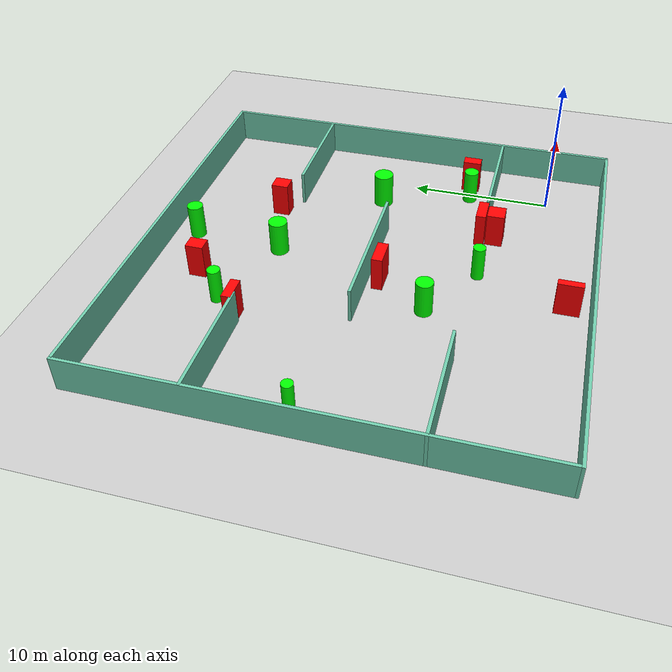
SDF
<sdf version="1.7">
 <world name="default">
  <light name="sun" type="directional">
   <pose>0 0 10 0 -0 0</pose>
   <diffuse>0.8 0.8 0.8 1</diffuse>
   <specular>0.2 0.2 0.2 1</specular>
   <attenuation>
    <range>1000</range>
    <constant>0.9</constant>
    <linear>0.01</linear>
    <quadratic>0.001</quadratic>
   </attenuation>
   <direction>-0.5 0.1 -0.9</direction>
   <spot><inner_angle>0</inner_angle><outer_angle>0</outer_angle><falloff>0</falloff></spot>
  </light>
  <model name="ground_plane">
   <static>1</static>
   <link name="link">
    <collision name="collision">
     <geometry><plane><normal>0 0 1</normal><size>100 100</size></plane></geometry>
     <surface>
      <contact><collide_bitmask>65535</collide_bitmask></contact>
      <friction><ode><mu>100</mu><mu2>50</mu2></ode></friction>
     </surface>
    </collision>
    <visual name="visual">
     <cast_shadows>0</cast_shadows>
     <geometry><plane><normal>0 0 1</normal><size>100 100</size></plane></geometry>
     <material>
      <script><uri>file://media/materials/scripts/gazebo.material</uri><name>Gazebo/Grey</name></script>
     </material>
    </visual>
   </link>
  </model>
  <gravity>0 0 -9.8</gravity>
  <magnetic_field>6e-06 2.3e-05 -4.2e-05</magnetic_field>
  <atmosphere type="adiabatic"/>
  <physics type="ode">
   <max_step_size>0.001</max_step_size>
   <real_time_factor>1</real_time_factor>
   <real_time_update_rate>1000</real_time_update_rate>
  </physics>
  <scene><ambient>0.4 0.4 0.4 1</ambient><background>0.7 0.7 0.7 1</background><shadows>1</shadows></scene>
  <spherical_coordinates>
   <surface_model>EARTH_WGS84</surface_model>
   <latitude_deg>0</latitude_deg>
   <longitude_deg>0</longitude_deg>
   <elevation>0</elevation>
   <heading_deg>0</heading_deg>
  </spherical_coordinates>
  <model name="my_base_walls">
   <link name="Wall_10">
    <collision name="Wall_10_Collision">
     <geometry><box><size>8.2 0.2 2.5</size></box></geometry>
     <pose>0 0 1.25 0 -0 0</pose>
    </collision>
    <visual name="Wall_10_Visual">
     <pose>0 0 1.25 0 -0 0</pose>
     <geometry><box><size>8.2 0.2 2.5</size></box></geometry>
     <material>
      <script><uri>file://media/materials/scripts/gazebo.material</uri><name>Gazebo/Grey</name></script>
      <ambient>0.435294 0.796078 0.67451 1</ambient>
     </material>
     <meta><layer>0</layer></meta>
    </visual>
    <pose>-11 -7 0 0 -0 0</pose>
   </link>
   <link name="Wall_12">
    <collision name="Wall_12_Collision">
     <geometry><box><size>8.2 0.2 2.5</size></box></geometry>
     <pose>0 0 1.25 0 -0 0</pose>
    </collision>
    <visual name="Wall_12_Visual">
     <pose>0 0 1.25 0 -0 0</pose>
     <geometry><box><size>8.2 0.2 2.5</size></box></geometry>
     <material>
      <script><uri>file://media/materials/scripts/gazebo.material</uri><name>Gazebo/Grey</name></script>
      <ambient>0.435294 0.796078 0.67451 1</ambient>
     </material>
     <meta><layer>0</layer></meta>
    </visual>
    <pose>-11 7 0 0 -0 0</pose>
   </link>
   <link name="Wall_14">
    <collision name="Wall_14_Collision">
     <geometry><box><size>8.2 0.2 2.5</size></box></geometry>
     <pose>0 0 1.25 0 -0 0</pose>
    </collision>
    <visual name="Wall_14_Visual">
     <pose>0 0 1.25 0 -0 0</pose>
     <geometry><box><size>8.2 0.2 2.5</size></box></geometry>
     <material>
      <script><uri>file://media/materials/scripts/gazebo.material</uri><name>Gazebo/Grey</name></script>
      <ambient>0.435294 0.796078 0.67451 1</ambient>
     </material>
     <meta><layer>0</layer></meta>
    </visual>
    <pose>11 7 0 0 -0 3.14159</pose>
   </link>
   <link name="Wall_16">
    <collision name="Wall_16_Collision">
     <geometry><box><size>10.2 0.2 2.5</size></box></geometry>
     <pose>0 0 1.25 0 -0 0</pose>
    </collision>
    <visual name="Wall_16_Visual">
     <pose>0 0 1.25 0 -0 0</pose>
     <geometry><box><size>10.2 0.2 2.5</size></box></geometry>
     <material>
      <script><uri>file://media/materials/scripts/gazebo.material</uri><name>Gazebo/Grey</name></script>
      <ambient>0.435294 0.796078 0.67451 1</ambient>
     </material>
     <meta><layer>0</layer></meta>
    </visual>
    <pose>0 0 0 0 -0 3.14159</pose>
   </link>
   <link name="Wall_2">
    <collision name="Wall_2_Collision">
     <geometry><box><size>30.2 0.2 2.5</size></box></geometry>
     <pose>0 0 1.25 0 -0 0</pose>
    </collision>
    <visual name="Wall_2_Visual">
     <pose>0 0 1.25 0 -0 0</pose>
     <geometry><box><size>30.2 0.2 2.5</size></box></geometry>
     <material>
      <script><uri>file://media/materials/scripts/gazebo.material</uri><name>Gazebo/Grey</name></script>
      <ambient>0.435294 0.796078 0.67451 1</ambient>
     </material>
     <meta><layer>0</layer></meta>
    </visual>
    <pose>0 -15 0 0 -0 3.14159</pose>
   </link>
   <link name="Wall_3">
    <collision name="Wall_3_Collision">
     <geometry><box><size>30.2 0.2 2.5</size></box></geometry>
     <pose>0 0 1.25 0 -0 0</pose>
    </collision>
    <visual name="Wall_3_Visual">
     <pose>0 0 1.25 0 -0 0</pose>
     <geometry><box><size>30.2 0.2 2.5</size></box></geometry>
     <material>
      <script><uri>file://media/materials/scripts/gazebo.material</uri><name>Gazebo/Grey</name></script>
      <ambient>0.435294 0.796078 0.67451 1</ambient>
     </material>
     <meta><layer>0</layer></meta>
    </visual>
    <pose>-15 0 0 0 -0 1.5708</pose>
   </link>
   <link name="Wall_4">
    <collision name="Wall_4_Collision">
     <geometry><box><size>30.2 0.2 2.5</size></box></geometry>
     <pose>0 0 1.25 0 -0 0</pose>
    </collision>
    <visual name="Wall_4_Visual">
     <pose>0 0 1.25 0 -0 0</pose>
     <geometry><box><size>30.2 0.2 2.5</size></box></geometry>
     <material>
      <script><uri>file://media/materials/scripts/gazebo.material</uri><name>Gazebo/Grey</name></script>
      <ambient>0.435294 0.796078 0.67451 1</ambient>
     </material>
     <meta><layer>0</layer></meta>
    </visual>
    <pose>0 15 0 0 -0 0</pose>
   </link>
   <link name="Wall_6">
    <collision name="Wall_6_Collision">
     <geometry><box><size>30.2 0.2 2.5</size></box></geometry>
     <pose>0 0 1.25 0 -0 0</pose>
    </collision>
    <visual name="Wall_6_Visual">
     <pose>0 0 1.25 0 -0 0</pose>
     <geometry><box><size>30.2 0.2 2.5</size></box></geometry>
     <material>
      <script><uri>file://media/materials/scripts/gazebo.material</uri><name>Gazebo/Grey</name></script>
      <ambient>0.435294 0.796078 0.67451 1</ambient>
     </material>
     <meta><layer>0</layer></meta>
    </visual>
    <pose>15 0 0 0 -0 1.5708</pose>
   </link>
   <link name="Wall_8">
    <collision name="Wall_8_Collision">
     <geometry><box><size>8.2 0.2 2.5</size></box></geometry>
     <pose>0 0 1.25 0 -0 0</pose>
    </collision>
    <visual name="Wall_8_Visual">
     <pose>0 0 1.25 0 -0 0</pose>
     <geometry><box><size>8.2 0.2 2.5</size></box></geometry>
     <material>
      <script><uri>file://media/materials/scripts/gazebo.material</uri><name>Gazebo/Grey</name></script>
      <ambient>0.435294 0.796078 0.67451 1</ambient>
     </material>
     <meta><layer>0</layer></meta>
    </visual>
    <pose>11 -7 0 0 -0 3.14159</pose>
   </link>
   <static>1</static>
   <pose>-11 11 0 0 -0 0</pose>
  </model>
  <model name="cylinder1">
   <static>1</static>
   <link name="link">
    <inertial>
     <mass>1</mass>
     <inertia><ixx>0.5</ixx><ixy>0</ixy><ixz>0</ixz><iyy>0.5</iyy><iyz>0</iyz><izz>1</izz></inertia>
    </inertial>
    <collision name="collision">
     <geometry><cylinder><radius>0.5962180562307992</radius><length>2.5</length></cylinder></geometry>
    </collision>
    <visual name="visual">
     <geometry><cylinder><radius>0.5962180562307992</radius><length>2.5</length></cylinder></geometry>
     <material>
      <ambient>0 1 0 1</ambient>
      <diffuse>0 1 0 1</diffuse>
      <specular>0.1 0.1 0.1 1</specular>
      <emissive>0 0 0 0</emissive>
     </material>
    </visual>
   </link>
   <pose>-14.010651571895982 6.608825217761234 1.25 0 0 0</pose>
  </model>
  <model name="cylinder2">
   <static>1</static>
   <link name="link">
    <inertial>
     <mass>1</mass>
     <inertia><ixx>0.5</ixx><ixy>0</ixy><ixz>0</ixz><iyy>0.5</iyy><iyz>0</iyz><izz>1</izz></inertia>
    </inertial>
    <collision name="collision">
     <geometry><cylinder><radius>0.4301331536562519</radius><length>2.5</length></cylinder></geometry>
    </collision>
    <visual name="visual">
     <geometry><cylinder><radius>0.4301331536562519</radius><length>2.5</length></cylinder></geometry>
     <material>
      <ambient>0 1 0 1</ambient>
      <diffuse>0 1 0 1</diffuse>
      <specular>0.1 0.1 0.1 1</specular>
      <emissive>0 0 0 0</emissive>
     </material>
    </visual>
   </link>
   <pose>-9.577299178462226 3.774518703337007 1.25 0 0 0</pose>
  </model>
  <model name="cylinder3">
   <static>1</static>
   <link name="link">
    <inertial>
     <mass>1</mass>
     <inertia><ixx>0.5</ixx><ixy>0</ixy><ixz>0</ixz><iyy>0.5</iyy><iyz>0</iyz><izz>1</izz></inertia>
    </inertial>
    <collision name="collision">
     <geometry><cylinder><radius>0.44154466474629406</radius><length>2.5</length></cylinder></geometry>
    </collision>
    <visual name="visual">
     <geometry><cylinder><radius>0.44154466474629406</radius><length>2.5</length></cylinder></geometry>
     <material>
      <ambient>0 1 0 1</ambient>
      <diffuse>0 1 0 1</diffuse>
      <specular>0.1 0.1 0.1 1</specular>
      <emissive>0 0 0 0</emissive>
     </material>
    </visual>
   </link>
   <pose>-16.23249972618176 20.07868664935769 1.25 0 0 0</pose>
  </model>
  <model name="cylinder4">
   <static>1</static>
   <link name="link">
    <inertial>
     <mass>1</mass>
     <inertia><ixx>0.5</ixx><ixy>0</ixy><ixz>0</ixz><iyy>0.5</iyy><iyz>0</iyz><izz>1</izz></inertia>
    </inertial>
    <collision name="collision">
     <geometry><cylinder><radius>0.6531182921640233</radius><length>2.5</length></cylinder></geometry>
    </collision>
    <visual name="visual">
     <geometry><cylinder><radius>0.6531182921640233</radius><length>2.5</length></cylinder></geometry>
     <material>
      <ambient>0 1 0 1</ambient>
      <diffuse>0 1 0 1</diffuse>
      <specular>0.1 0.1 0.1 1</specular>
      <emissive>0 0 0 0</emissive>
     </material>
    </visual>
   </link>
   <pose>-10.192356453054561 17.823773396276934 1.25 0 0 0</pose>
  </model>
  <model name="cylinder5">
   <static>1</static>
   <link name="link">
    <inertial>
     <mass>1</mass>
     <inertia><ixx>0.5</ixx><ixy>0</ixy><ixz>0</ixz><iyy>0.5</iyy><iyz>0</iyz><izz>1</izz></inertia>
    </inertial>
    <collision name="collision">
     <geometry><cylinder><radius>0.5481431809446653</radius><length>2.5</length></cylinder></geometry>
    </collision>
    <visual name="visual">
     <geometry><cylinder><radius>0.5481431809446653</radius><length>2.5</length></cylinder></geometry>
     <material>
      <ambient>0 1 0 1</ambient>
      <diffuse>0 1 0 1</diffuse>
      <specular>0.1 0.1 0.1 1</specular>
      <emissive>0 0 0 0</emissive>
     </material>
    </visual>
   </link>
   <pose>-9.848240342002546 24.18881323492571 1.25 0 0 0</pose>
  </model>
  <model name="cylinder6">
   <static>1</static>
   <link name="link">
    <inertial>
     <mass>1</mass>
     <inertia><ixx>0.5</ixx><ixy>0</ixy><ixz>0</ixz><iyy>0.5</iyy><iyz>0</iyz><izz>1</izz></inertia>
    </inertial>
    <collision name="collision">
     <geometry><cylinder><radius>0.6943474430963813</radius><length>2.5</length></cylinder></geometry>
    </collision>
    <visual name="visual">
     <geometry><cylinder><radius>0.6943474430963813</radius><length>2.5</length></cylinder></geometry>
     <material>
      <ambient>0 1 0 1</ambient>
      <diffuse>0 1 0 1</diffuse>
      <specular>0.1 0.1 0.1 1</specular>
      <emissive>0 0 0 0</emissive>
     </material>
    </visual>
   </link>
   <pose>-2.484726182906652 12.112850503898498 1.25 0 0 0</pose>
  </model>
  <model name="cylinder7">
   <static>1</static>
   <link name="link">
    <inertial>
     <mass>1</mass>
     <inertia><ixx>0.5</ixx><ixy>0</ixy><ixz>0</ixz><iyy>0.5</iyy><iyz>0</iyz><izz>1</izz></inertia>
    </inertial>
    <collision name="collision">
     <geometry><cylinder><radius>0.37343123072192075</radius><length>2.5</length></cylinder></geometry>
    </collision>
    <visual name="visual">
     <geometry><cylinder><radius>0.37343123072192075</radius><length>2.5</length></cylinder></geometry>
     <material>
      <ambient>0 1 0 1</ambient>
      <diffuse>0 1 0 1</diffuse>
      <specular>0.1 0.1 0.1 1</specular>
      <emissive>0 0 0 0</emissive>
     </material>
    </visual>
   </link>
   <pose>-24.438892247940533 12.216778330105566 1.25 0 0 0</pose>
  </model>
  <model name="cylinder8">
   <static>1</static>
   <link name="link">
    <inertial>
     <mass>1</mass>
     <inertia><ixx>0.5</ixx><ixy>0</ixy><ixz>0</ixz><iyy>0.5</iyy><iyz>0</iyz><izz>1</izz></inertia>
    </inertial>
    <collision name="collision">
     <geometry><cylinder><radius>0.5146984288599886</radius><length>2.5</length></cylinder></geometry>
    </collision>
    <visual name="visual">
     <geometry><cylinder><radius>0.5146984288599886</radius><length>2.5</length></cylinder></geometry>
     <material>
      <ambient>0 1 0 1</ambient>
      <diffuse>0 1 0 1</diffuse>
      <specular>0.1 0.1 0.1 1</specular>
      <emissive>0 0 0 0</emissive>
     </material>
    </visual>
   </link>
   <pose>-0.4606610302767393 5.774932535528778 1.25 0 0 0</pose>
  </model>
  <model name="box1">
   <static>1</static>
   <link name="link">
    <inertial>
     <mass>1</mass>
     <inertia><ixx>0.083</ixx><ixy>0</ixy><ixz>0</ixz><iyy>0.083</iyy><iyz>0</iyz><izz>0.083</izz></inertia>
    </inertial>
    <collision name="collision">
     <geometry><box><size>1.2623537977259924 1.2203614124583764 2.5</size></box></geometry>
    </collision>
    <visual name="visual">
     <geometry><box><size>1.2623537977259924 1.2203614124583764 2.5</size></box></geometry>
     <material>
      <ambient>1 0 0 1</ambient>
      <diffuse>1 0 0 1</diffuse>
      <specular>0.1 0.1 0.1 1</specular>
      <emissive>0 0 0 0</emissive>
     </material>
    </visual>
    <sensor name="my_contact" type="contact">
     <contact><collision>box_collision</collision><topic>__default_topic__</topic></contact>
    </sensor>
   </link>
   <pose>-5.2258700501244775 3.2213256818392306 1.25 0 0 0</pose>
  </model>
  <model name="box2">
   <static>1</static>
   <link name="link">
    <inertial>
     <mass>1</mass>
     <inertia><ixx>0.083</ixx><ixy>0</ixy><ixz>0</ixz><iyy>0.083</iyy><iyz>0</iyz><izz>0.083</izz></inertia>
    </inertial>
    <collision name="collision">
     <geometry><box><size>1.8600001662190717 0.6952741014624034 2.5</size></box></geometry>
    </collision>
    <visual name="visual">
     <geometry><box><size>1.8600001662190717 0.6952741014624034 2.5</size></box></geometry>
     <material>
      <ambient>1 0 0 1</ambient>
      <diffuse>1 0 0 1</diffuse>
      <specular>0.1 0.1 0.1 1</specular>
      <emissive>0 0 0 0</emissive>
     </material>
    </visual>
    <sensor name="my_contact" type="contact">
     <contact><collision>box_collision</collision><topic>__default_topic__</topic></contact>
    </sensor>
   </link>
   <pose>-5.143990917359503 4.2434661269331295 1.25 0 0 0</pose>
  </model>
  <model name="box3">
   <static>1</static>
   <link name="link">
    <inertial>
     <mass>1</mass>
     <inertia><ixx>0.083</ixx><ixy>0</ixy><ixz>0</ixz><iyy>0.083</iyy><iyz>0</iyz><izz>0.083</izz></inertia>
    </inertial>
    <collision name="collision">
     <geometry><box><size>0.9859391424745582 1.2296432294087078 2.5</size></box></geometry>
    </collision>
    <visual name="visual">
     <geometry><box><size>0.9859391424745582 1.2296432294087078 2.5</size></box></geometry>
     <material>
      <ambient>1 0 0 1</ambient>
      <diffuse>1 0 0 1</diffuse>
      <specular>0.1 0.1 0.1 1</specular>
      <emissive>0 0 0 0</emissive>
     </material>
    </visual>
    <sensor name="my_contact" type="contact">
     <contact><collision>box_collision</collision><topic>__default_topic__</topic></contact>
    </sensor>
   </link>
   <pose>-13.870846845475544 22.304956837947945 1.25 0 0 0</pose>
  </model>
  <model name="box4">
   <static>1</static>
   <link name="link">
    <inertial>
     <mass>1</mass>
     <inertia><ixx>0.083</ixx><ixy>0</ixy><ixz>0</ixz><iyy>0.083</iyy><iyz>0</iyz><izz>0.083</izz></inertia>
    </inertial>
    <collision name="collision">
     <geometry><box><size>0.5040970415553756 1.7007174833385186 2.5</size></box></geometry>
    </collision>
    <visual name="visual">
     <geometry><box><size>0.5040970415553756 1.7007174833385186 2.5</size></box></geometry>
     <material>
      <ambient>1 0 0 1</ambient>
      <diffuse>1 0 0 1</diffuse>
      <specular>0.1 0.1 0.1 1</specular>
      <emissive>0 0 0 0</emissive>
     </material>
    </visual>
    <sensor name="my_contact" type="contact">
     <contact><collision>box_collision</collision><topic>__default_topic__</topic></contact>
    </sensor>
   </link>
   <pose>-11.802433150780567 -2.4141983780672605 1.25 0 0 0</pose>
  </model>
  <model name="box5">
   <static>1</static>
   <link name="link">
    <inertial>
     <mass>1</mass>
     <inertia><ixx>0.083</ixx><ixy>0</ixy><ixz>0</ixz><iyy>0.083</iyy><iyz>0</iyz><izz>0.083</izz></inertia>
    </inertial>
    <collision name="collision">
     <geometry><box><size>1.6940300070282948 0.6401141934686104 2.5</size></box></geometry>
    </collision>
    <visual name="visual">
     <geometry><box><size>1.6940300070282948 0.6401141934686104 2.5</size></box></geometry>
     <material>
      <ambient>1 0 0 1</ambient>
      <diffuse>1 0 0 1</diffuse>
      <specular>0.1 0.1 0.1 1</specular>
      <emissive>0 0 0 0</emissive>
     </material>
    </visual>
    <sensor name="my_contact" type="contact">
     <contact><collision>box_collision</collision><topic>__default_topic__</topic></contact>
    </sensor>
   </link>
   <pose>-17.664138978050893 18.310735210195364 1.25 0 0 0</pose>
  </model>
  <model name="box6">
   <static>1</static>
   <link name="link">
    <inertial>
     <mass>1</mass>
     <inertia><ixx>0.083</ixx><ixy>0</ixy><ixz>0</ixz><iyy>0.083</iyy><iyz>0</iyz><izz>0.083</izz></inertia>
    </inertial>
    <collision name="collision">
     <geometry><box><size>1.9028711923644193 0.7488042196972099 2.5</size></box></geometry>
    </collision>
    <visual name="visual">
     <geometry><box><size>1.9028711923644193 0.7488042196972099 2.5</size></box></geometry>
     <material>
      <ambient>1 0 0 1</ambient>
      <diffuse>1 0 0 1</diffuse>
      <specular>0.1 0.1 0.1 1</specular>
      <emissive>0 0 0 0</emissive>
     </material>
    </visual>
    <sensor name="my_contact" type="contact">
     <contact><collision>box_collision</collision><topic>__default_topic__</topic></contact>
    </sensor>
   </link>
   <pose>-11.689291017109287 10.111277611237194 1.25 0 0 0</pose>
  </model>
  <model name="box7">
   <static>1</static>
   <link name="link">
    <inertial>
     <mass>1</mass>
     <inertia><ixx>0.083</ixx><ixy>0</ixy><ixz>0</ixz><iyy>0.083</iyy><iyz>0</iyz><izz>0.083</izz></inertia>
    </inertial>
    <collision name="collision">
     <geometry><box><size>0.7713094491841513 1.3019148280849906 2.5</size></box></geometry>
    </collision>
    <visual name="visual">
     <geometry><box><size>0.7713094491841513 1.3019148280849906 2.5</size></box></geometry>
     <material>
      <ambient>1 0 0 1</ambient>
      <diffuse>1 0 0 1</diffuse>
      <specular>0.1 0.1 0.1 1</specular>
      <emissive>0 0 0 0</emissive>
     </material>
    </visual>
    <sensor name="my_contact" type="contact">
     <contact><collision>box_collision</collision><topic>__default_topic__</topic></contact>
    </sensor>
   </link>
   <pose>1.131829894334988 5.947102859863694 1.25 0 0 0</pose>
  </model>
  <model name="box8">
   <static>1</static>
   <link name="link">
    <inertial>
     <mass>1</mass>
     <inertia><ixx>0.083</ixx><ixy>0</ixy><ixz>0</ixz><iyy>0.083</iyy><iyz>0</iyz><izz>0.083</izz></inertia>
    </inertial>
    <collision name="collision">
     <geometry><box><size>1.081968085525916 1.2072971380661828 2.5</size></box></geometry>
    </collision>
    <visual name="visual">
     <geometry><box><size>1.081968085525916 1.2072971380661828 2.5</size></box></geometry>
     <material>
      <ambient>1 0 0 1</ambient>
      <diffuse>1 0 0 1</diffuse>
      <specular>0.1 0.1 0.1 1</specular>
      <emissive>0 0 0 0</emissive>
     </material>
    </visual>
    <sensor name="my_contact" type="contact">
     <contact><collision>box_collision</collision><topic>__default_topic__</topic></contact>
    </sensor>
   </link>
   <pose>-5.451720173218707 19.176842333387967 1.25 0 0 0</pose>
  </model>
 </world>
</sdf>
